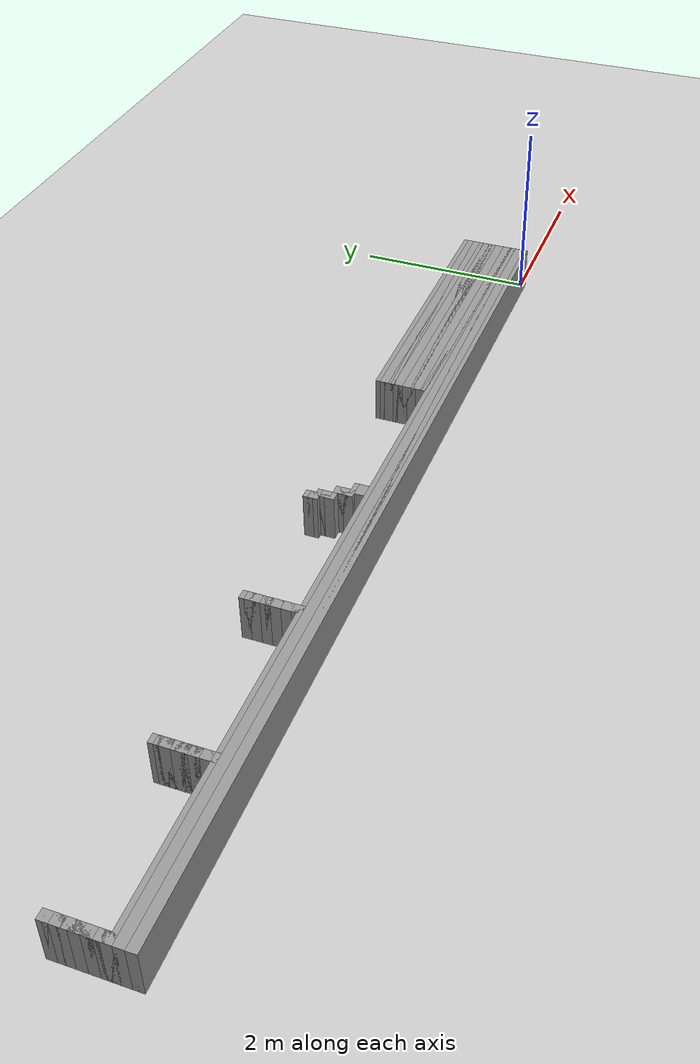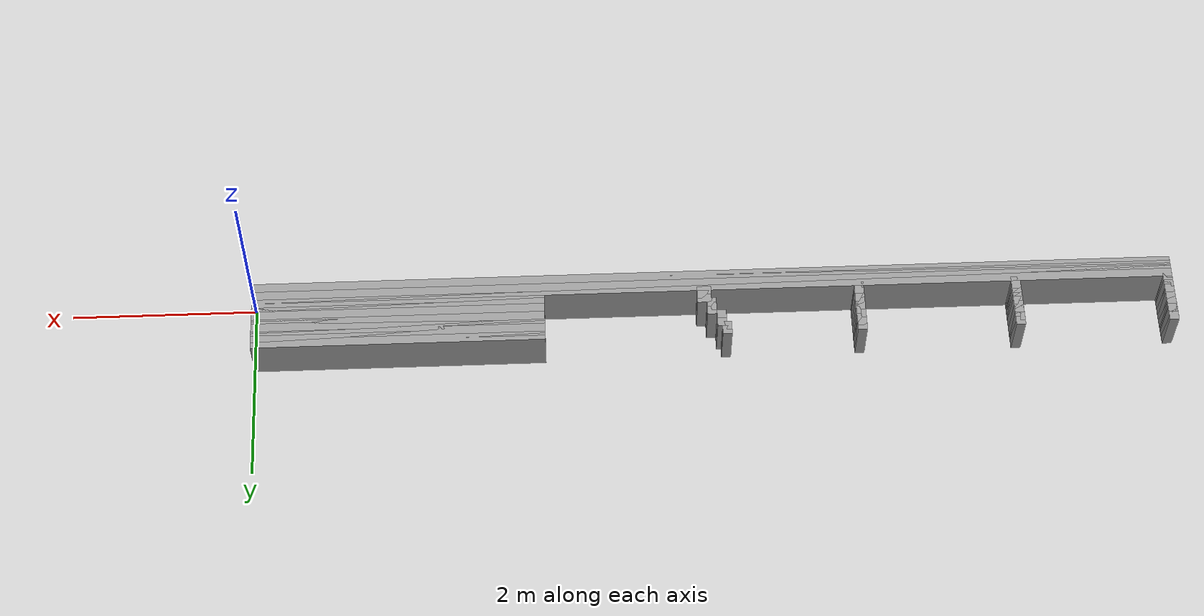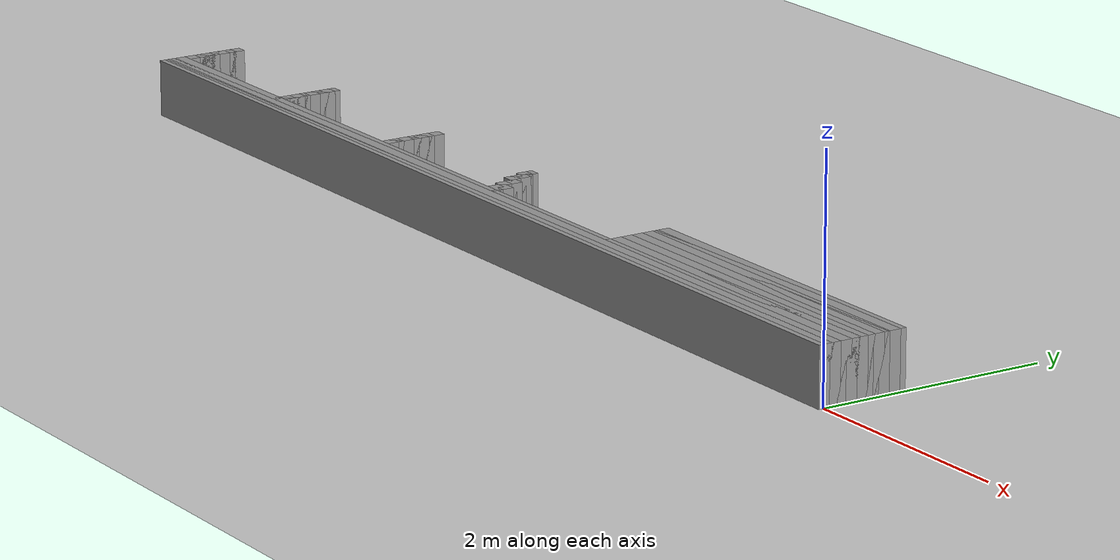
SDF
<sdf version="1.6">
 <world name="GridMap">
  <include><uri>model://sun</uri></include>
  <include><uri>model://ground_plane</uri></include>
  <model name="GridMap">
   <link name="Wall_(99.5,0.0)">
    <collision name="Wall_(99.5,0.0)_Collision">
     <geometry><box><size>9.950000000000001 0.1 0.5</size></box></geometry>
     <pose>-4.9750000000000005 0.0 0.25 0 -0 0</pose>
    </collision>
    <inertial>
     <mass>0.5</mass>
     <pose>0 0.01 0 0 0 0</pose>
     <inertia><ixx>0.004</ixx><ixy>0.001</ixy><ixz>0</ixz><iyy>0.006</iyy><iyz>0</iyz><izz>0.007</izz></inertia>
    </inertial>
    <visual name="Wall_(99.5,0.0)_Visual">
     <geometry><box><size>9.950000000000001 0.1 0.5</size></box></geometry>
     <pose>-4.9750000000000005 0.0 0.25 0 -0 0</pose>
     <material>
      <script><uri>file://media/materials/scripts/gazebo.material</uri><name>Gazebo/Grey</name></script>
      <ambient>1 1 1 1</ambient>
     </material>
     <meta><layer>0</layer></meta>
    </visual>
   </link>
   <link name="Wall_(99.5,1.0)">
    <collision name="Wall_(99.5,1.0)_Collision">
     <geometry><box><size>9.950000000000001 0.1 0.5</size></box></geometry>
     <pose>-4.9750000000000005 0.05 0.25 0 -0 0</pose>
    </collision>
    <inertial>
     <mass>0.5</mass>
     <pose>0 0.01 0 0 0 0</pose>
     <inertia><ixx>0.004</ixx><ixy>0.001</ixy><ixz>0</ixz><iyy>0.006</iyy><iyz>0</iyz><izz>0.007</izz></inertia>
    </inertial>
    <visual name="Wall_(99.5,1.0)_Visual">
     <geometry><box><size>9.950000000000001 0.1 0.5</size></box></geometry>
     <pose>-4.9750000000000005 0.05 0.25 0 -0 0</pose>
     <material>
      <script><uri>file://media/materials/scripts/gazebo.material</uri><name>Gazebo/Grey</name></script>
      <ambient>1 1 1 1</ambient>
     </material>
     <meta><layer>0</layer></meta>
    </visual>
   </link>
   <link name="Wall_(99.5,2.0)">
    <collision name="Wall_(99.5,2.0)_Collision">
     <geometry><box><size>9.950000000000001 0.1 0.5</size></box></geometry>
     <pose>-4.9750000000000005 0.1 0.25 0 -0 0</pose>
    </collision>
    <inertial>
     <mass>0.5</mass>
     <pose>0 0.01 0 0 0 0</pose>
     <inertia><ixx>0.004</ixx><ixy>0.001</ixy><ixz>0</ixz><iyy>0.006</iyy><iyz>0</iyz><izz>0.007</izz></inertia>
    </inertial>
    <visual name="Wall_(99.5,2.0)_Visual">
     <geometry><box><size>9.950000000000001 0.1 0.5</size></box></geometry>
     <pose>-4.9750000000000005 0.1 0.25 0 -0 0</pose>
     <material>
      <script><uri>file://media/materials/scripts/gazebo.material</uri><name>Gazebo/Grey</name></script>
      <ambient>1 1 1 1</ambient>
     </material>
     <meta><layer>0</layer></meta>
    </visual>
   </link>
   <link name="Wall_(99.5,3.0)">
    <collision name="Wall_(99.5,3.0)_Collision">
     <geometry><box><size>9.950000000000001 0.1 0.5</size></box></geometry>
     <pose>-4.9750000000000005 0.15000000000000002 0.25 0 -0 0</pose>
    </collision>
    <inertial>
     <mass>0.5</mass>
     <pose>0 0.01 0 0 0 0</pose>
     <inertia><ixx>0.004</ixx><ixy>0.001</ixy><ixz>0</ixz><iyy>0.006</iyy><iyz>0</iyz><izz>0.007</izz></inertia>
    </inertial>
    <visual name="Wall_(99.5,3.0)_Visual">
     <geometry><box><size>9.950000000000001 0.1 0.5</size></box></geometry>
     <pose>-4.9750000000000005 0.15000000000000002 0.25 0 -0 0</pose>
     <material>
      <script><uri>file://media/materials/scripts/gazebo.material</uri><name>Gazebo/Grey</name></script>
      <ambient>1 1 1 1</ambient>
     </material>
     <meta><layer>0</layer></meta>
    </visual>
   </link>
   <link name="Wall_(31.5,4.0)">
    <collision name="Wall_(31.5,4.0)_Collision">
     <geometry><box><size>3.1500000000000004 0.1 0.5</size></box></geometry>
     <pose>-1.5750000000000002 0.2 0.25 0 -0 0</pose>
    </collision>
    <inertial>
     <mass>0.5</mass>
     <pose>0 0.01 0 0 0 0</pose>
     <inertia><ixx>0.004</ixx><ixy>0.001</ixy><ixz>0</ixz><iyy>0.006</iyy><iyz>0</iyz><izz>0.007</izz></inertia>
    </inertial>
    <visual name="Wall_(31.5,4.0)_Visual">
     <geometry><box><size>3.1500000000000004 0.1 0.5</size></box></geometry>
     <pose>-1.5750000000000002 0.2 0.25 0 -0 0</pose>
     <material>
      <script><uri>file://media/materials/scripts/gazebo.material</uri><name>Gazebo/Grey</name></script>
      <ambient>1 1 1 1</ambient>
     </material>
     <meta><layer>0</layer></meta>
    </visual>
   </link>
   <link name="Wall_(97.5,4.0)">
    <collision name="Wall_(97.5,4.0)_Collision">
     <geometry><box><size>0.15000000000000002 0.1 0.5</size></box></geometry>
     <pose>-4.875 0.2 0.25 0 -0 0</pose>
    </collision>
    <inertial>
     <mass>0.5</mass>
     <pose>0 0.01 0 0 0 0</pose>
     <inertia><ixx>0.004</ixx><ixy>0.001</ixy><ixz>0</ixz><iyy>0.006</iyy><iyz>0</iyz><izz>0.007</izz></inertia>
    </inertial>
    <visual name="Wall_(97.5,4.0)_Visual">
     <geometry><box><size>0.15000000000000002 0.1 0.5</size></box></geometry>
     <pose>-4.875 0.2 0.25 0 -0 0</pose>
     <material>
      <script><uri>file://media/materials/scripts/gazebo.material</uri><name>Gazebo/Grey</name></script>
      <ambient>1 1 1 1</ambient>
     </material>
     <meta><layer>0</layer></meta>
    </visual>
   </link>
   <link name="Wall_(131.0,4.0)">
    <collision name="Wall_(131.0,4.0)_Collision">
     <geometry><box><size>0.1 0.1 0.5</size></box></geometry>
     <pose>-6.550000000000001 0.2 0.25 0 -0 0</pose>
    </collision>
    <inertial>
     <mass>0.5</mass>
     <pose>0 0.01 0 0 0 0</pose>
     <inertia><ixx>0.004</ixx><ixy>0.001</ixy><ixz>0</ixz><iyy>0.006</iyy><iyz>0</iyz><izz>0.007</izz></inertia>
    </inertial>
    <visual name="Wall_(131.0,4.0)_Visual">
     <geometry><box><size>0.1 0.1 0.5</size></box></geometry>
     <pose>-6.550000000000001 0.2 0.25 0 -0 0</pose>
     <material>
      <script><uri>file://media/materials/scripts/gazebo.material</uri><name>Gazebo/Grey</name></script>
      <ambient>1 1 1 1</ambient>
     </material>
     <meta><layer>0</layer></meta>
    </visual>
   </link>
   <link name="Wall_(165.0,4.0)">
    <collision name="Wall_(165.0,4.0)_Collision">
     <geometry><box><size>0.1 0.1 0.5</size></box></geometry>
     <pose>-8.25 0.2 0.25 0 -0 0</pose>
    </collision>
    <inertial>
     <mass>0.5</mass>
     <pose>0 0.01 0 0 0 0</pose>
     <inertia><ixx>0.004</ixx><ixy>0.001</ixy><ixz>0</ixz><iyy>0.006</iyy><iyz>0</iyz><izz>0.007</izz></inertia>
    </inertial>
    <visual name="Wall_(165.0,4.0)_Visual">
     <geometry><box><size>0.1 0.1 0.5</size></box></geometry>
     <pose>-8.25 0.2 0.25 0 -0 0</pose>
     <material>
      <script><uri>file://media/materials/scripts/gazebo.material</uri><name>Gazebo/Grey</name></script>
      <ambient>1 1 1 1</ambient>
     </material>
     <meta><layer>0</layer></meta>
    </visual>
   </link>
   <link name="Wall_(198.0,4.0)">
    <collision name="Wall_(198.0,4.0)_Collision">
     <geometry><box><size>0.1 0.1 0.5</size></box></geometry>
     <pose>-9.9 0.2 0.25 0 -0 0</pose>
    </collision>
    <inertial>
     <mass>0.5</mass>
     <pose>0 0.01 0 0 0 0</pose>
     <inertia><ixx>0.004</ixx><ixy>0.001</ixy><ixz>0</ixz><iyy>0.006</iyy><iyz>0</iyz><izz>0.007</izz></inertia>
    </inertial>
    <visual name="Wall_(198.0,4.0)_Visual">
     <geometry><box><size>0.1 0.1 0.5</size></box></geometry>
     <pose>-9.9 0.2 0.25 0 -0 0</pose>
     <material>
      <script><uri>file://media/materials/scripts/gazebo.material</uri><name>Gazebo/Grey</name></script>
      <ambient>1 1 1 1</ambient>
     </material>
     <meta><layer>0</layer></meta>
    </visual>
   </link>
   <link name="Wall_(31.5,5.0)">
    <collision name="Wall_(31.5,5.0)_Collision">
     <geometry><box><size>3.1500000000000004 0.1 0.5</size></box></geometry>
     <pose>-1.5750000000000002 0.25 0.25 0 -0 0</pose>
    </collision>
    <inertial>
     <mass>0.5</mass>
     <pose>0 0.01 0 0 0 0</pose>
     <inertia><ixx>0.004</ixx><ixy>0.001</ixy><ixz>0</ixz><iyy>0.006</iyy><iyz>0</iyz><izz>0.007</izz></inertia>
    </inertial>
    <visual name="Wall_(31.5,5.0)_Visual">
     <geometry><box><size>3.1500000000000004 0.1 0.5</size></box></geometry>
     <pose>-1.5750000000000002 0.25 0.25 0 -0 0</pose>
     <material>
      <script><uri>file://media/materials/scripts/gazebo.material</uri><name>Gazebo/Grey</name></script>
      <ambient>1 1 1 1</ambient>
     </material>
     <meta><layer>0</layer></meta>
    </visual>
   </link>
   <link name="Wall_(97.5,5.0)">
    <collision name="Wall_(97.5,5.0)_Collision">
     <geometry><box><size>0.15000000000000002 0.1 0.5</size></box></geometry>
     <pose>-4.875 0.25 0.25 0 -0 0</pose>
    </collision>
    <inertial>
     <mass>0.5</mass>
     <pose>0 0.01 0 0 0 0</pose>
     <inertia><ixx>0.004</ixx><ixy>0.001</ixy><ixz>0</ixz><iyy>0.006</iyy><iyz>0</iyz><izz>0.007</izz></inertia>
    </inertial>
    <visual name="Wall_(97.5,5.0)_Visual">
     <geometry><box><size>0.15000000000000002 0.1 0.5</size></box></geometry>
     <pose>-4.875 0.25 0.25 0 -0 0</pose>
     <material>
      <script><uri>file://media/materials/scripts/gazebo.material</uri><name>Gazebo/Grey</name></script>
      <ambient>1 1 1 1</ambient>
     </material>
     <meta><layer>0</layer></meta>
    </visual>
   </link>
   <link name="Wall_(131.0,5.0)">
    <collision name="Wall_(131.0,5.0)_Collision">
     <geometry><box><size>0.1 0.1 0.5</size></box></geometry>
     <pose>-6.550000000000001 0.25 0.25 0 -0 0</pose>
    </collision>
    <inertial>
     <mass>0.5</mass>
     <pose>0 0.01 0 0 0 0</pose>
     <inertia><ixx>0.004</ixx><ixy>0.001</ixy><ixz>0</ixz><iyy>0.006</iyy><iyz>0</iyz><izz>0.007</izz></inertia>
    </inertial>
    <visual name="Wall_(131.0,5.0)_Visual">
     <geometry><box><size>0.1 0.1 0.5</size></box></geometry>
     <pose>-6.550000000000001 0.25 0.25 0 -0 0</pose>
     <material>
      <script><uri>file://media/materials/scripts/gazebo.material</uri><name>Gazebo/Grey</name></script>
      <ambient>1 1 1 1</ambient>
     </material>
     <meta><layer>0</layer></meta>
    </visual>
   </link>
   <link name="Wall_(165.0,5.0)">
    <collision name="Wall_(165.0,5.0)_Collision">
     <geometry><box><size>0.1 0.1 0.5</size></box></geometry>
     <pose>-8.25 0.25 0.25 0 -0 0</pose>
    </collision>
    <inertial>
     <mass>0.5</mass>
     <pose>0 0.01 0 0 0 0</pose>
     <inertia><ixx>0.004</ixx><ixy>0.001</ixy><ixz>0</ixz><iyy>0.006</iyy><iyz>0</iyz><izz>0.007</izz></inertia>
    </inertial>
    <visual name="Wall_(165.0,5.0)_Visual">
     <geometry><box><size>0.1 0.1 0.5</size></box></geometry>
     <pose>-8.25 0.25 0.25 0 -0 0</pose>
     <material>
      <script><uri>file://media/materials/scripts/gazebo.material</uri><name>Gazebo/Grey</name></script>
      <ambient>1 1 1 1</ambient>
     </material>
     <meta><layer>0</layer></meta>
    </visual>
   </link>
   <link name="Wall_(198.0,5.0)">
    <collision name="Wall_(198.0,5.0)_Collision">
     <geometry><box><size>0.1 0.1 0.5</size></box></geometry>
     <pose>-9.9 0.25 0.25 0 -0 0</pose>
    </collision>
    <inertial>
     <mass>0.5</mass>
     <pose>0 0.01 0 0 0 0</pose>
     <inertia><ixx>0.004</ixx><ixy>0.001</ixy><ixz>0</ixz><iyy>0.006</iyy><iyz>0</iyz><izz>0.007</izz></inertia>
    </inertial>
    <visual name="Wall_(198.0,5.0)_Visual">
     <geometry><box><size>0.1 0.1 0.5</size></box></geometry>
     <pose>-9.9 0.25 0.25 0 -0 0</pose>
     <material>
      <script><uri>file://media/materials/scripts/gazebo.material</uri><name>Gazebo/Grey</name></script>
      <ambient>1 1 1 1</ambient>
     </material>
     <meta><layer>0</layer></meta>
    </visual>
   </link>
   <link name="Wall_(31.5,6.0)">
    <collision name="Wall_(31.5,6.0)_Collision">
     <geometry><box><size>3.1500000000000004 0.1 0.5</size></box></geometry>
     <pose>-1.5750000000000002 0.30000000000000004 0.25 0 -0 0</pose>
    </collision>
    <inertial>
     <mass>0.5</mass>
     <pose>0 0.01 0 0 0 0</pose>
     <inertia><ixx>0.004</ixx><ixy>0.001</ixy><ixz>0</ixz><iyy>0.006</iyy><iyz>0</iyz><izz>0.007</izz></inertia>
    </inertial>
    <visual name="Wall_(31.5,6.0)_Visual">
     <geometry><box><size>3.1500000000000004 0.1 0.5</size></box></geometry>
     <pose>-1.5750000000000002 0.30000000000000004 0.25 0 -0 0</pose>
     <material>
      <script><uri>file://media/materials/scripts/gazebo.material</uri><name>Gazebo/Grey</name></script>
      <ambient>1 1 1 1</ambient>
     </material>
     <meta><layer>0</layer></meta>
    </visual>
   </link>
   <link name="Wall_(97.5,6.0)">
    <collision name="Wall_(97.5,6.0)_Collision">
     <geometry><box><size>0.15000000000000002 0.1 0.5</size></box></geometry>
     <pose>-4.875 0.30000000000000004 0.25 0 -0 0</pose>
    </collision>
    <inertial>
     <mass>0.5</mass>
     <pose>0 0.01 0 0 0 0</pose>
     <inertia><ixx>0.004</ixx><ixy>0.001</ixy><ixz>0</ixz><iyy>0.006</iyy><iyz>0</iyz><izz>0.007</izz></inertia>
    </inertial>
    <visual name="Wall_(97.5,6.0)_Visual">
     <geometry><box><size>0.15000000000000002 0.1 0.5</size></box></geometry>
     <pose>-4.875 0.30000000000000004 0.25 0 -0 0</pose>
     <material>
      <script><uri>file://media/materials/scripts/gazebo.material</uri><name>Gazebo/Grey</name></script>
      <ambient>1 1 1 1</ambient>
     </material>
     <meta><layer>0</layer></meta>
    </visual>
   </link>
   <link name="Wall_(131.0,6.0)">
    <collision name="Wall_(131.0,6.0)_Collision">
     <geometry><box><size>0.1 0.1 0.5</size></box></geometry>
     <pose>-6.550000000000001 0.30000000000000004 0.25 0 -0 0</pose>
    </collision>
    <inertial>
     <mass>0.5</mass>
     <pose>0 0.01 0 0 0 0</pose>
     <inertia><ixx>0.004</ixx><ixy>0.001</ixy><ixz>0</ixz><iyy>0.006</iyy><iyz>0</iyz><izz>0.007</izz></inertia>
    </inertial>
    <visual name="Wall_(131.0,6.0)_Visual">
     <geometry><box><size>0.1 0.1 0.5</size></box></geometry>
     <pose>-6.550000000000001 0.30000000000000004 0.25 0 -0 0</pose>
     <material>
      <script><uri>file://media/materials/scripts/gazebo.material</uri><name>Gazebo/Grey</name></script>
      <ambient>1 1 1 1</ambient>
     </material>
     <meta><layer>0</layer></meta>
    </visual>
   </link>
   <link name="Wall_(165.0,6.0)">
    <collision name="Wall_(165.0,6.0)_Collision">
     <geometry><box><size>0.1 0.1 0.5</size></box></geometry>
     <pose>-8.25 0.30000000000000004 0.25 0 -0 0</pose>
    </collision>
    <inertial>
     <mass>0.5</mass>
     <pose>0 0.01 0 0 0 0</pose>
     <inertia><ixx>0.004</ixx><ixy>0.001</ixy><ixz>0</ixz><iyy>0.006</iyy><iyz>0</iyz><izz>0.007</izz></inertia>
    </inertial>
    <visual name="Wall_(165.0,6.0)_Visual">
     <geometry><box><size>0.1 0.1 0.5</size></box></geometry>
     <pose>-8.25 0.30000000000000004 0.25 0 -0 0</pose>
     <material>
      <script><uri>file://media/materials/scripts/gazebo.material</uri><name>Gazebo/Grey</name></script>
      <ambient>1 1 1 1</ambient>
     </material>
     <meta><layer>0</layer></meta>
    </visual>
   </link>
   <link name="Wall_(198.0,6.0)">
    <collision name="Wall_(198.0,6.0)_Collision">
     <geometry><box><size>0.1 0.1 0.5</size></box></geometry>
     <pose>-9.9 0.30000000000000004 0.25 0 -0 0</pose>
    </collision>
    <inertial>
     <mass>0.5</mass>
     <pose>0 0.01 0 0 0 0</pose>
     <inertia><ixx>0.004</ixx><ixy>0.001</ixy><ixz>0</ixz><iyy>0.006</iyy><iyz>0</iyz><izz>0.007</izz></inertia>
    </inertial>
    <visual name="Wall_(198.0,6.0)_Visual">
     <geometry><box><size>0.1 0.1 0.5</size></box></geometry>
     <pose>-9.9 0.30000000000000004 0.25 0 -0 0</pose>
     <material>
      <script><uri>file://media/materials/scripts/gazebo.material</uri><name>Gazebo/Grey</name></script>
      <ambient>1 1 1 1</ambient>
     </material>
     <meta><layer>0</layer></meta>
    </visual>
   </link>
   <link name="Wall_(31.5,7.0)">
    <collision name="Wall_(31.5,7.0)_Collision">
     <geometry><box><size>3.1500000000000004 0.1 0.5</size></box></geometry>
     <pose>-1.5750000000000002 0.35000000000000003 0.25 0 -0 0</pose>
    </collision>
    <inertial>
     <mass>0.5</mass>
     <pose>0 0.01 0 0 0 0</pose>
     <inertia><ixx>0.004</ixx><ixy>0.001</ixy><ixz>0</ixz><iyy>0.006</iyy><iyz>0</iyz><izz>0.007</izz></inertia>
    </inertial>
    <visual name="Wall_(31.5,7.0)_Visual">
     <geometry><box><size>3.1500000000000004 0.1 0.5</size></box></geometry>
     <pose>-1.5750000000000002 0.35000000000000003 0.25 0 -0 0</pose>
     <material>
      <script><uri>file://media/materials/scripts/gazebo.material</uri><name>Gazebo/Grey</name></script>
      <ambient>1 1 1 1</ambient>
     </material>
     <meta><layer>0</layer></meta>
    </visual>
   </link>
   <link name="Wall_(99.0,7.0)">
    <collision name="Wall_(99.0,7.0)_Collision">
     <geometry><box><size>0.1 0.1 0.5</size></box></geometry>
     <pose>-4.95 0.35000000000000003 0.25 0 -0 0</pose>
    </collision>
    <inertial>
     <mass>0.5</mass>
     <pose>0 0.01 0 0 0 0</pose>
     <inertia><ixx>0.004</ixx><ixy>0.001</ixy><ixz>0</ixz><iyy>0.006</iyy><iyz>0</iyz><izz>0.007</izz></inertia>
    </inertial>
    <visual name="Wall_(99.0,7.0)_Visual">
     <geometry><box><size>0.1 0.1 0.5</size></box></geometry>
     <pose>-4.95 0.35000000000000003 0.25 0 -0 0</pose>
     <material>
      <script><uri>file://media/materials/scripts/gazebo.material</uri><name>Gazebo/Grey</name></script>
      <ambient>1 1 1 1</ambient>
     </material>
     <meta><layer>0</layer></meta>
    </visual>
   </link>
   <link name="Wall_(131.0,7.0)">
    <collision name="Wall_(131.0,7.0)_Collision">
     <geometry><box><size>0.1 0.1 0.5</size></box></geometry>
     <pose>-6.550000000000001 0.35000000000000003 0.25 0 -0 0</pose>
    </collision>
    <inertial>
     <mass>0.5</mass>
     <pose>0 0.01 0 0 0 0</pose>
     <inertia><ixx>0.004</ixx><ixy>0.001</ixy><ixz>0</ixz><iyy>0.006</iyy><iyz>0</iyz><izz>0.007</izz></inertia>
    </inertial>
    <visual name="Wall_(131.0,7.0)_Visual">
     <geometry><box><size>0.1 0.1 0.5</size></box></geometry>
     <pose>-6.550000000000001 0.35000000000000003 0.25 0 -0 0</pose>
     <material>
      <script><uri>file://media/materials/scripts/gazebo.material</uri><name>Gazebo/Grey</name></script>
      <ambient>1 1 1 1</ambient>
     </material>
     <meta><layer>0</layer></meta>
    </visual>
   </link>
   <link name="Wall_(165.0,7.0)">
    <collision name="Wall_(165.0,7.0)_Collision">
     <geometry><box><size>0.1 0.1 0.5</size></box></geometry>
     <pose>-8.25 0.35000000000000003 0.25 0 -0 0</pose>
    </collision>
    <inertial>
     <mass>0.5</mass>
     <pose>0 0.01 0 0 0 0</pose>
     <inertia><ixx>0.004</ixx><ixy>0.001</ixy><ixz>0</ixz><iyy>0.006</iyy><iyz>0</iyz><izz>0.007</izz></inertia>
    </inertial>
    <visual name="Wall_(165.0,7.0)_Visual">
     <geometry><box><size>0.1 0.1 0.5</size></box></geometry>
     <pose>-8.25 0.35000000000000003 0.25 0 -0 0</pose>
     <material>
      <script><uri>file://media/materials/scripts/gazebo.material</uri><name>Gazebo/Grey</name></script>
      <ambient>1 1 1 1</ambient>
     </material>
     <meta><layer>0</layer></meta>
    </visual>
   </link>
   <link name="Wall_(198.0,7.0)">
    <collision name="Wall_(198.0,7.0)_Collision">
     <geometry><box><size>0.1 0.1 0.5</size></box></geometry>
     <pose>-9.9 0.35000000000000003 0.25 0 -0 0</pose>
    </collision>
    <inertial>
     <mass>0.5</mass>
     <pose>0 0.01 0 0 0 0</pose>
     <inertia><ixx>0.004</ixx><ixy>0.001</ixy><ixz>0</ixz><iyy>0.006</iyy><iyz>0</iyz><izz>0.007</izz></inertia>
    </inertial>
    <visual name="Wall_(198.0,7.0)_Visual">
     <geometry><box><size>0.1 0.1 0.5</size></box></geometry>
     <pose>-9.9 0.35000000000000003 0.25 0 -0 0</pose>
     <material>
      <script><uri>file://media/materials/scripts/gazebo.material</uri><name>Gazebo/Grey</name></script>
      <ambient>1 1 1 1</ambient>
     </material>
     <meta><layer>0</layer></meta>
    </visual>
   </link>
   <link name="Wall_(31.5,8.0)">
    <collision name="Wall_(31.5,8.0)_Collision">
     <geometry><box><size>3.1500000000000004 0.1 0.5</size></box></geometry>
     <pose>-1.5750000000000002 0.4 0.25 0 -0 0</pose>
    </collision>
    <inertial>
     <mass>0.5</mass>
     <pose>0 0.01 0 0 0 0</pose>
     <inertia><ixx>0.004</ixx><ixy>0.001</ixy><ixz>0</ixz><iyy>0.006</iyy><iyz>0</iyz><izz>0.007</izz></inertia>
    </inertial>
    <visual name="Wall_(31.5,8.0)_Visual">
     <geometry><box><size>3.1500000000000004 0.1 0.5</size></box></geometry>
     <pose>-1.5750000000000002 0.4 0.25 0 -0 0</pose>
     <material>
      <script><uri>file://media/materials/scripts/gazebo.material</uri><name>Gazebo/Grey</name></script>
      <ambient>1 1 1 1</ambient>
     </material>
     <meta><layer>0</layer></meta>
    </visual>
   </link>
   <link name="Wall_(99.0,8.0)">
    <collision name="Wall_(99.0,8.0)_Collision">
     <geometry><box><size>0.1 0.1 0.5</size></box></geometry>
     <pose>-4.95 0.4 0.25 0 -0 0</pose>
    </collision>
    <inertial>
     <mass>0.5</mass>
     <pose>0 0.01 0 0 0 0</pose>
     <inertia><ixx>0.004</ixx><ixy>0.001</ixy><ixz>0</ixz><iyy>0.006</iyy><iyz>0</iyz><izz>0.007</izz></inertia>
    </inertial>
    <visual name="Wall_(99.0,8.0)_Visual">
     <geometry><box><size>0.1 0.1 0.5</size></box></geometry>
     <pose>-4.95 0.4 0.25 0 -0 0</pose>
     <material>
      <script><uri>file://media/materials/scripts/gazebo.material</uri><name>Gazebo/Grey</name></script>
      <ambient>1 1 1 1</ambient>
     </material>
     <meta><layer>0</layer></meta>
    </visual>
   </link>
   <link name="Wall_(131.0,8.0)">
    <collision name="Wall_(131.0,8.0)_Collision">
     <geometry><box><size>0.1 0.1 0.5</size></box></geometry>
     <pose>-6.550000000000001 0.4 0.25 0 -0 0</pose>
    </collision>
    <inertial>
     <mass>0.5</mass>
     <pose>0 0.01 0 0 0 0</pose>
     <inertia><ixx>0.004</ixx><ixy>0.001</ixy><ixz>0</ixz><iyy>0.006</iyy><iyz>0</iyz><izz>0.007</izz></inertia>
    </inertial>
    <visual name="Wall_(131.0,8.0)_Visual">
     <geometry><box><size>0.1 0.1 0.5</size></box></geometry>
     <pose>-6.550000000000001 0.4 0.25 0 -0 0</pose>
     <material>
      <script><uri>file://media/materials/scripts/gazebo.material</uri><name>Gazebo/Grey</name></script>
      <ambient>1 1 1 1</ambient>
     </material>
     <meta><layer>0</layer></meta>
    </visual>
   </link>
   <link name="Wall_(165.0,8.0)">
    <collision name="Wall_(165.0,8.0)_Collision">
     <geometry><box><size>0.1 0.1 0.5</size></box></geometry>
     <pose>-8.25 0.4 0.25 0 -0 0</pose>
    </collision>
    <inertial>
     <mass>0.5</mass>
     <pose>0 0.01 0 0 0 0</pose>
     <inertia><ixx>0.004</ixx><ixy>0.001</ixy><ixz>0</ixz><iyy>0.006</iyy><iyz>0</iyz><izz>0.007</izz></inertia>
    </inertial>
    <visual name="Wall_(165.0,8.0)_Visual">
     <geometry><box><size>0.1 0.1 0.5</size></box></geometry>
     <pose>-8.25 0.4 0.25 0 -0 0</pose>
     <material>
      <script><uri>file://media/materials/scripts/gazebo.material</uri><name>Gazebo/Grey</name></script>
      <ambient>1 1 1 1</ambient>
     </material>
     <meta><layer>0</layer></meta>
    </visual>
   </link>
   <link name="Wall_(198.0,8.0)">
    <collision name="Wall_(198.0,8.0)_Collision">
     <geometry><box><size>0.1 0.1 0.5</size></box></geometry>
     <pose>-9.9 0.4 0.25 0 -0 0</pose>
    </collision>
    <inertial>
     <mass>0.5</mass>
     <pose>0 0.01 0 0 0 0</pose>
     <inertia><ixx>0.004</ixx><ixy>0.001</ixy><ixz>0</ixz><iyy>0.006</iyy><iyz>0</iyz><izz>0.007</izz></inertia>
    </inertial>
    <visual name="Wall_(198.0,8.0)_Visual">
     <geometry><box><size>0.1 0.1 0.5</size></box></geometry>
     <pose>-9.9 0.4 0.25 0 -0 0</pose>
     <material>
      <script><uri>file://media/materials/scripts/gazebo.material</uri><name>Gazebo/Grey</name></script>
      <ambient>1 1 1 1</ambient>
     </material>
     <meta><layer>0</layer></meta>
    </visual>
   </link>
   <link name="Wall_(31.5,9.0)">
    <collision name="Wall_(31.5,9.0)_Collision">
     <geometry><box><size>3.1500000000000004 0.1 0.5</size></box></geometry>
     <pose>-1.5750000000000002 0.45 0.25 0 -0 0</pose>
    </collision>
    <inertial>
     <mass>0.5</mass>
     <pose>0 0.01 0 0 0 0</pose>
     <inertia><ixx>0.004</ixx><ixy>0.001</ixy><ixz>0</ixz><iyy>0.006</iyy><iyz>0</iyz><izz>0.007</izz></inertia>
    </inertial>
    <visual name="Wall_(31.5,9.0)_Visual">
     <geometry><box><size>3.1500000000000004 0.1 0.5</size></box></geometry>
     <pose>-1.5750000000000002 0.45 0.25 0 -0 0</pose>
     <material>
      <script><uri>file://media/materials/scripts/gazebo.material</uri><name>Gazebo/Grey</name></script>
      <ambient>1 1 1 1</ambient>
     </material>
     <meta><layer>0</layer></meta>
    </visual>
   </link>
   <link name="Wall_(99.0,9.0)">
    <collision name="Wall_(99.0,9.0)_Collision">
     <geometry><box><size>0.1 0.1 0.5</size></box></geometry>
     <pose>-4.95 0.45 0.25 0 -0 0</pose>
    </collision>
    <inertial>
     <mass>0.5</mass>
     <pose>0 0.01 0 0 0 0</pose>
     <inertia><ixx>0.004</ixx><ixy>0.001</ixy><ixz>0</ixz><iyy>0.006</iyy><iyz>0</iyz><izz>0.007</izz></inertia>
    </inertial>
    <visual name="Wall_(99.0,9.0)_Visual">
     <geometry><box><size>0.1 0.1 0.5</size></box></geometry>
     <pose>-4.95 0.45 0.25 0 -0 0</pose>
     <material>
      <script><uri>file://media/materials/scripts/gazebo.material</uri><name>Gazebo/Grey</name></script>
      <ambient>1 1 1 1</ambient>
     </material>
     <meta><layer>0</layer></meta>
    </visual>
   </link>
   <link name="Wall_(131.0,9.0)">
    <collision name="Wall_(131.0,9.0)_Collision">
     <geometry><box><size>0.1 0.1 0.5</size></box></geometry>
     <pose>-6.550000000000001 0.45 0.25 0 -0 0</pose>
    </collision>
    <inertial>
     <mass>0.5</mass>
     <pose>0 0.01 0 0 0 0</pose>
     <inertia><ixx>0.004</ixx><ixy>0.001</ixy><ixz>0</ixz><iyy>0.006</iyy><iyz>0</iyz><izz>0.007</izz></inertia>
    </inertial>
    <visual name="Wall_(131.0,9.0)_Visual">
     <geometry><box><size>0.1 0.1 0.5</size></box></geometry>
     <pose>-6.550000000000001 0.45 0.25 0 -0 0</pose>
     <material>
      <script><uri>file://media/materials/scripts/gazebo.material</uri><name>Gazebo/Grey</name></script>
      <ambient>1 1 1 1</ambient>
     </material>
     <meta><layer>0</layer></meta>
    </visual>
   </link>
   <link name="Wall_(165.0,9.0)">
    <collision name="Wall_(165.0,9.0)_Collision">
     <geometry><box><size>0.1 0.1 0.5</size></box></geometry>
     <pose>-8.25 0.45 0.25 0 -0 0</pose>
    </collision>
    <inertial>
     <mass>0.5</mass>
     <pose>0 0.01 0 0 0 0</pose>
     <inertia><ixx>0.004</ixx><ixy>0.001</ixy><ixz>0</ixz><iyy>0.006</iyy><iyz>0</iyz><izz>0.007</izz></inertia>
    </inertial>
    <visual name="Wall_(165.0,9.0)_Visual">
     <geometry><box><size>0.1 0.1 0.5</size></box></geometry>
     <pose>-8.25 0.45 0.25 0 -0 0</pose>
     <material>
      <script><uri>file://media/materials/scripts/gazebo.material</uri><name>Gazebo/Grey</name></script>
      <ambient>1 1 1 1</ambient>
     </material>
     <meta><layer>0</layer></meta>
    </visual>
   </link>
   <link name="Wall_(198.0,9.0)">
    <collision name="Wall_(198.0,9.0)_Collision">
     <geometry><box><size>0.1 0.1 0.5</size></box></geometry>
     <pose>-9.9 0.45 0.25 0 -0 0</pose>
    </collision>
    <inertial>
     <mass>0.5</mass>
     <pose>0 0.01 0 0 0 0</pose>
     <inertia><ixx>0.004</ixx><ixy>0.001</ixy><ixz>0</ixz><iyy>0.006</iyy><iyz>0</iyz><izz>0.007</izz></inertia>
    </inertial>
    <visual name="Wall_(198.0,9.0)_Visual">
     <geometry><box><size>0.1 0.1 0.5</size></box></geometry>
     <pose>-9.9 0.45 0.25 0 -0 0</pose>
     <material>
      <script><uri>file://media/materials/scripts/gazebo.material</uri><name>Gazebo/Grey</name></script>
      <ambient>1 1 1 1</ambient>
     </material>
     <meta><layer>0</layer></meta>
    </visual>
   </link>
   <link name="Wall_(31.5,10.0)">
    <collision name="Wall_(31.5,10.0)_Collision">
     <geometry><box><size>3.1500000000000004 0.1 0.5</size></box></geometry>
     <pose>-1.5750000000000002 0.5 0.25 0 -0 0</pose>
    </collision>
    <inertial>
     <mass>0.5</mass>
     <pose>0 0.01 0 0 0 0</pose>
     <inertia><ixx>0.004</ixx><ixy>0.001</ixy><ixz>0</ixz><iyy>0.006</iyy><iyz>0</iyz><izz>0.007</izz></inertia>
    </inertial>
    <visual name="Wall_(31.5,10.0)_Visual">
     <geometry><box><size>3.1500000000000004 0.1 0.5</size></box></geometry>
     <pose>-1.5750000000000002 0.5 0.25 0 -0 0</pose>
     <material>
      <script><uri>file://media/materials/scripts/gazebo.material</uri><name>Gazebo/Grey</name></script>
      <ambient>1 1 1 1</ambient>
     </material>
     <meta><layer>0</layer></meta>
    </visual>
   </link>
   <link name="Wall_(101.0,10.0)">
    <collision name="Wall_(101.0,10.0)_Collision">
     <geometry><box><size>0.1 0.1 0.5</size></box></geometry>
     <pose>-5.050000000000001 0.5 0.25 0 -0 0</pose>
    </collision>
    <inertial>
     <mass>0.5</mass>
     <pose>0 0.01 0 0 0 0</pose>
     <inertia><ixx>0.004</ixx><ixy>0.001</ixy><ixz>0</ixz><iyy>0.006</iyy><iyz>0</iyz><izz>0.007</izz></inertia>
    </inertial>
    <visual name="Wall_(101.0,10.0)_Visual">
     <geometry><box><size>0.1 0.1 0.5</size></box></geometry>
     <pose>-5.050000000000001 0.5 0.25 0 -0 0</pose>
     <material>
      <script><uri>file://media/materials/scripts/gazebo.material</uri><name>Gazebo/Grey</name></script>
      <ambient>1 1 1 1</ambient>
     </material>
     <meta><layer>0</layer></meta>
    </visual>
   </link>
   <link name="Wall_(131.0,10.0)">
    <collision name="Wall_(131.0,10.0)_Collision">
     <geometry><box><size>0.1 0.1 0.5</size></box></geometry>
     <pose>-6.550000000000001 0.5 0.25 0 -0 0</pose>
    </collision>
    <inertial>
     <mass>0.5</mass>
     <pose>0 0.01 0 0 0 0</pose>
     <inertia><ixx>0.004</ixx><ixy>0.001</ixy><ixz>0</ixz><iyy>0.006</iyy><iyz>0</iyz><izz>0.007</izz></inertia>
    </inertial>
    <visual name="Wall_(131.0,10.0)_Visual">
     <geometry><box><size>0.1 0.1 0.5</size></box></geometry>
     <pose>-6.550000000000001 0.5 0.25 0 -0 0</pose>
     <material>
      <script><uri>file://media/materials/scripts/gazebo.material</uri><name>Gazebo/Grey</name></script>
      <ambient>1 1 1 1</ambient>
     </material>
     <meta><layer>0</layer></meta>
    </visual>
   </link>
   <link name="Wall_(165.0,10.0)">
    <collision name="Wall_(165.0,10.0)_Collision">
     <geometry><box><size>0.1 0.1 0.5</size></box></geometry>
     <pose>-8.25 0.5 0.25 0 -0 0</pose>
    </collision>
    <inertial>
     <mass>0.5</mass>
     <pose>0 0.01 0 0 0 0</pose>
     <inertia><ixx>0.004</ixx><ixy>0.001</ixy><ixz>0</ixz><iyy>0.006</iyy><iyz>0</iyz><izz>0.007</izz></inertia>
    </inertial>
    <visual name="Wall_(165.0,10.0)_Visual">
     <geometry><box><size>0.1 0.1 0.5</size></box></geometry>
     <pose>-8.25 0.5 0.25 0 -0 0</pose>
     <material>
      <script><uri>file://media/materials/scripts/gazebo.material</uri><name>Gazebo/Grey</name></script>
      <ambient>1 1 1 1</ambient>
     </material>
     <meta><layer>0</layer></meta>
    </visual>
   </link>
   <link name="Wall_(198.0,10.0)">
    <collision name="Wall_(198.0,10.0)_Collision">
     <geometry><box><size>0.1 0.1 0.5</size></box></geometry>
     <pose>-9.9 0.5 0.25 0 -0 0</pose>
    </collision>
    <inertial>
     <mass>0.5</mass>
     <pose>0 0.01 0 0 0 0</pose>
     <inertia><ixx>0.004</ixx><ixy>0.001</ixy><ixz>0</ixz><iyy>0.006</iyy><iyz>0</iyz><izz>0.007</izz></inertia>
    </inertial>
    <visual name="Wall_(198.0,10.0)_Visual">
     <geometry><box><size>0.1 0.1 0.5</size></box></geometry>
     <pose>-9.9 0.5 0.25 0 -0 0</pose>
     <material>
      <script><uri>file://media/materials/scripts/gazebo.material</uri><name>Gazebo/Grey</name></script>
      <ambient>1 1 1 1</ambient>
     </material>
     <meta><layer>0</layer></meta>
    </visual>
   </link>
   <link name="Wall_(31.5,11.0)">
    <collision name="Wall_(31.5,11.0)_Collision">
     <geometry><box><size>3.1500000000000004 0.1 0.5</size></box></geometry>
     <pose>-1.5750000000000002 0.55 0.25 0 -0 0</pose>
    </collision>
    <inertial>
     <mass>0.5</mass>
     <pose>0 0.01 0 0 0 0</pose>
     <inertia><ixx>0.004</ixx><ixy>0.001</ixy><ixz>0</ixz><iyy>0.006</iyy><iyz>0</iyz><izz>0.007</izz></inertia>
    </inertial>
    <visual name="Wall_(31.5,11.0)_Visual">
     <geometry><box><size>3.1500000000000004 0.1 0.5</size></box></geometry>
     <pose>-1.5750000000000002 0.55 0.25 0 -0 0</pose>
     <material>
      <script><uri>file://media/materials/scripts/gazebo.material</uri><name>Gazebo/Grey</name></script>
      <ambient>1 1 1 1</ambient>
     </material>
     <meta><layer>0</layer></meta>
    </visual>
   </link>
   <link name="Wall_(101.0,11.0)">
    <collision name="Wall_(101.0,11.0)_Collision">
     <geometry><box><size>0.1 0.1 0.5</size></box></geometry>
     <pose>-5.050000000000001 0.55 0.25 0 -0 0</pose>
    </collision>
    <inertial>
     <mass>0.5</mass>
     <pose>0 0.01 0 0 0 0</pose>
     <inertia><ixx>0.004</ixx><ixy>0.001</ixy><ixz>0</ixz><iyy>0.006</iyy><iyz>0</iyz><izz>0.007</izz></inertia>
    </inertial>
    <visual name="Wall_(101.0,11.0)_Visual">
     <geometry><box><size>0.1 0.1 0.5</size></box></geometry>
     <pose>-5.050000000000001 0.55 0.25 0 -0 0</pose>
     <material>
      <script><uri>file://media/materials/scripts/gazebo.material</uri><name>Gazebo/Grey</name></script>
      <ambient>1 1 1 1</ambient>
     </material>
     <meta><layer>0</layer></meta>
    </visual>
   </link>
   <link name="Wall_(131.0,11.0)">
    <collision name="Wall_(131.0,11.0)_Collision">
     <geometry><box><size>0.1 0.1 0.5</size></box></geometry>
     <pose>-6.550000000000001 0.55 0.25 0 -0 0</pose>
    </collision>
    <inertial>
     <mass>0.5</mass>
     <pose>0 0.01 0 0 0 0</pose>
     <inertia><ixx>0.004</ixx><ixy>0.001</ixy><ixz>0</ixz><iyy>0.006</iyy><iyz>0</iyz><izz>0.007</izz></inertia>
    </inertial>
    <visual name="Wall_(131.0,11.0)_Visual">
     <geometry><box><size>0.1 0.1 0.5</size></box></geometry>
     <pose>-6.550000000000001 0.55 0.25 0 -0 0</pose>
     <material>
      <script><uri>file://media/materials/scripts/gazebo.material</uri><name>Gazebo/Grey</name></script>
      <ambient>1 1 1 1</ambient>
     </material>
     <meta><layer>0</layer></meta>
    </visual>
   </link>
   <link name="Wall_(165.0,11.0)">
    <collision name="Wall_(165.0,11.0)_Collision">
     <geometry><box><size>0.1 0.1 0.5</size></box></geometry>
     <pose>-8.25 0.55 0.25 0 -0 0</pose>
    </collision>
    <inertial>
     <mass>0.5</mass>
     <pose>0 0.01 0 0 0 0</pose>
     <inertia><ixx>0.004</ixx><ixy>0.001</ixy><ixz>0</ixz><iyy>0.006</iyy><iyz>0</iyz><izz>0.007</izz></inertia>
    </inertial>
    <visual name="Wall_(165.0,11.0)_Visual">
     <geometry><box><size>0.1 0.1 0.5</size></box></geometry>
     <pose>-8.25 0.55 0.25 0 -0 0</pose>
     <material>
      <script><uri>file://media/materials/scripts/gazebo.material</uri><name>Gazebo/Grey</name></script>
      <ambient>1 1 1 1</ambient>
     </material>
     <meta><layer>0</layer></meta>
    </visual>
   </link>
   <link name="Wall_(198.0,11.0)">
    <collision name="Wall_(198.0,11.0)_Collision">
     <geometry><box><size>0.1 0.1 0.5</size></box></geometry>
     <pose>-9.9 0.55 0.25 0 -0 0</pose>
    </collision>
    <inertial>
     <mass>0.5</mass>
     <pose>0 0.01 0 0 0 0</pose>
     <inertia><ixx>0.004</ixx><ixy>0.001</ixy><ixz>0</ixz><iyy>0.006</iyy><iyz>0</iyz><izz>0.007</izz></inertia>
    </inertial>
    <visual name="Wall_(198.0,11.0)_Visual">
     <geometry><box><size>0.1 0.1 0.5</size></box></geometry>
     <pose>-9.9 0.55 0.25 0 -0 0</pose>
     <material>
      <script><uri>file://media/materials/scripts/gazebo.material</uri><name>Gazebo/Grey</name></script>
      <ambient>1 1 1 1</ambient>
     </material>
     <meta><layer>0</layer></meta>
    </visual>
   </link>
   <link name="Wall_(31.5,12.0)">
    <collision name="Wall_(31.5,12.0)_Collision">
     <geometry><box><size>3.1500000000000004 0.1 0.5</size></box></geometry>
     <pose>-1.5750000000000002 0.6000000000000001 0.25 0 -0 0</pose>
    </collision>
    <inertial>
     <mass>0.5</mass>
     <pose>0 0.01 0 0 0 0</pose>
     <inertia><ixx>0.004</ixx><ixy>0.001</ixy><ixz>0</ixz><iyy>0.006</iyy><iyz>0</iyz><izz>0.007</izz></inertia>
    </inertial>
    <visual name="Wall_(31.5,12.0)_Visual">
     <geometry><box><size>3.1500000000000004 0.1 0.5</size></box></geometry>
     <pose>-1.5750000000000002 0.6000000000000001 0.25 0 -0 0</pose>
     <material>
      <script><uri>file://media/materials/scripts/gazebo.material</uri><name>Gazebo/Grey</name></script>
      <ambient>1 1 1 1</ambient>
     </material>
     <meta><layer>0</layer></meta>
    </visual>
   </link>
   <link name="Wall_(101.0,12.0)">
    <collision name="Wall_(101.0,12.0)_Collision">
     <geometry><box><size>0.1 0.1 0.5</size></box></geometry>
     <pose>-5.050000000000001 0.6000000000000001 0.25 0 -0 0</pose>
    </collision>
    <inertial>
     <mass>0.5</mass>
     <pose>0 0.01 0 0 0 0</pose>
     <inertia><ixx>0.004</ixx><ixy>0.001</ixy><ixz>0</ixz><iyy>0.006</iyy><iyz>0</iyz><izz>0.007</izz></inertia>
    </inertial>
    <visual name="Wall_(101.0,12.0)_Visual">
     <geometry><box><size>0.1 0.1 0.5</size></box></geometry>
     <pose>-5.050000000000001 0.6000000000000001 0.25 0 -0 0</pose>
     <material>
      <script><uri>file://media/materials/scripts/gazebo.material</uri><name>Gazebo/Grey</name></script>
      <ambient>1 1 1 1</ambient>
     </material>
     <meta><layer>0</layer></meta>
    </visual>
   </link>
   <link name="Wall_(131.0,12.0)">
    <collision name="Wall_(131.0,12.0)_Collision">
     <geometry><box><size>0.1 0.1 0.5</size></box></geometry>
     <pose>-6.550000000000001 0.6000000000000001 0.25 0 -0 0</pose>
    </collision>
    <inertial>
     <mass>0.5</mass>
     <pose>0 0.01 0 0 0 0</pose>
     <inertia><ixx>0.004</ixx><ixy>0.001</ixy><ixz>0</ixz><iyy>0.006</iyy><iyz>0</iyz><izz>0.007</izz></inertia>
    </inertial>
    <visual name="Wall_(131.0,12.0)_Visual">
     <geometry><box><size>0.1 0.1 0.5</size></box></geometry>
     <pose>-6.550000000000001 0.6000000000000001 0.25 0 -0 0</pose>
     <material>
      <script><uri>file://media/materials/scripts/gazebo.material</uri><name>Gazebo/Grey</name></script>
      <ambient>1 1 1 1</ambient>
     </material>
     <meta><layer>0</layer></meta>
    </visual>
   </link>
   <link name="Wall_(165.0,12.0)">
    <collision name="Wall_(165.0,12.0)_Collision">
     <geometry><box><size>0.1 0.1 0.5</size></box></geometry>
     <pose>-8.25 0.6000000000000001 0.25 0 -0 0</pose>
    </collision>
    <inertial>
     <mass>0.5</mass>
     <pose>0 0.01 0 0 0 0</pose>
     <inertia><ixx>0.004</ixx><ixy>0.001</ixy><ixz>0</ixz><iyy>0.006</iyy><iyz>0</iyz><izz>0.007</izz></inertia>
    </inertial>
    <visual name="Wall_(165.0,12.0)_Visual">
     <geometry><box><size>0.1 0.1 0.5</size></box></geometry>
     <pose>-8.25 0.6000000000000001 0.25 0 -0 0</pose>
     <material>
      <script><uri>file://media/materials/scripts/gazebo.material</uri><name>Gazebo/Grey</name></script>
      <ambient>1 1 1 1</ambient>
     </material>
     <meta><layer>0</layer></meta>
    </visual>
   </link>
   <link name="Wall_(198.0,12.0)">
    <collision name="Wall_(198.0,12.0)_Collision">
     <geometry><box><size>0.1 0.1 0.5</size></box></geometry>
     <pose>-9.9 0.6000000000000001 0.25 0 -0 0</pose>
    </collision>
    <inertial>
     <mass>0.5</mass>
     <pose>0 0.01 0 0 0 0</pose>
     <inertia><ixx>0.004</ixx><ixy>0.001</ixy><ixz>0</ixz><iyy>0.006</iyy><iyz>0</iyz><izz>0.007</izz></inertia>
    </inertial>
    <visual name="Wall_(198.0,12.0)_Visual">
     <geometry><box><size>0.1 0.1 0.5</size></box></geometry>
     <pose>-9.9 0.6000000000000001 0.25 0 -0 0</pose>
     <material>
      <script><uri>file://media/materials/scripts/gazebo.material</uri><name>Gazebo/Grey</name></script>
      <ambient>1 1 1 1</ambient>
     </material>
     <meta><layer>0</layer></meta>
    </visual>
   </link>
   <link name="Wall_(31.5,13.0)">
    <collision name="Wall_(31.5,13.0)_Collision">
     <geometry><box><size>3.1500000000000004 0.1 0.5</size></box></geometry>
     <pose>-1.5750000000000002 0.65 0.25 0 -0 0</pose>
    </collision>
    <inertial>
     <mass>0.5</mass>
     <pose>0 0.01 0 0 0 0</pose>
     <inertia><ixx>0.004</ixx><ixy>0.001</ixy><ixz>0</ixz><iyy>0.006</iyy><iyz>0</iyz><izz>0.007</izz></inertia>
    </inertial>
    <visual name="Wall_(31.5,13.0)_Visual">
     <geometry><box><size>3.1500000000000004 0.1 0.5</size></box></geometry>
     <pose>-1.5750000000000002 0.65 0.25 0 -0 0</pose>
     <material>
      <script><uri>file://media/materials/scripts/gazebo.material</uri><name>Gazebo/Grey</name></script>
      <ambient>1 1 1 1</ambient>
     </material>
     <meta><layer>0</layer></meta>
    </visual>
   </link>
   <link name="Wall_(102.0,13.0)">
    <collision name="Wall_(102.0,13.0)_Collision">
     <geometry><box><size>0.1 0.1 0.5</size></box></geometry>
     <pose>-5.1000000000000005 0.65 0.25 0 -0 0</pose>
    </collision>
    <inertial>
     <mass>0.5</mass>
     <pose>0 0.01 0 0 0 0</pose>
     <inertia><ixx>0.004</ixx><ixy>0.001</ixy><ixz>0</ixz><iyy>0.006</iyy><iyz>0</iyz><izz>0.007</izz></inertia>
    </inertial>
    <visual name="Wall_(102.0,13.0)_Visual">
     <geometry><box><size>0.1 0.1 0.5</size></box></geometry>
     <pose>-5.1000000000000005 0.65 0.25 0 -0 0</pose>
     <material>
      <script><uri>file://media/materials/scripts/gazebo.material</uri><name>Gazebo/Grey</name></script>
      <ambient>1 1 1 1</ambient>
     </material>
     <meta><layer>0</layer></meta>
    </visual>
   </link>
   <link name="Wall_(131.0,13.0)">
    <collision name="Wall_(131.0,13.0)_Collision">
     <geometry><box><size>0.1 0.1 0.5</size></box></geometry>
     <pose>-6.550000000000001 0.65 0.25 0 -0 0</pose>
    </collision>
    <inertial>
     <mass>0.5</mass>
     <pose>0 0.01 0 0 0 0</pose>
     <inertia><ixx>0.004</ixx><ixy>0.001</ixy><ixz>0</ixz><iyy>0.006</iyy><iyz>0</iyz><izz>0.007</izz></inertia>
    </inertial>
    <visual name="Wall_(131.0,13.0)_Visual">
     <geometry><box><size>0.1 0.1 0.5</size></box></geometry>
     <pose>-6.550000000000001 0.65 0.25 0 -0 0</pose>
     <material>
      <script><uri>file://media/materials/scripts/gazebo.material</uri><name>Gazebo/Grey</name></script>
      <ambient>1 1 1 1</ambient>
     </material>
     <meta><layer>0</layer></meta>
    </visual>
   </link>
   <link name="Wall_(165.0,13.0)">
    <collision name="Wall_(165.0,13.0)_Collision">
     <geometry><box><size>0.1 0.1 0.5</size></box></geometry>
     <pose>-8.25 0.65 0.25 0 -0 0</pose>
    </collision>
    <inertial>
     <mass>0.5</mass>
     <pose>0 0.01 0 0 0 0</pose>
     <inertia><ixx>0.004</ixx><ixy>0.001</ixy><ixz>0</ixz><iyy>0.006</iyy><iyz>0</iyz><izz>0.007</izz></inertia>
    </inertial>
    <visual name="Wall_(165.0,13.0)_Visual">
     <geometry><box><size>0.1 0.1 0.5</size></box></geometry>
     <pose>-8.25 0.65 0.25 0 -0 0</pose>
     <material>
      <script><uri>file://media/materials/scripts/gazebo.material</uri><name>Gazebo/Grey</name></script>
      <ambient>1 1 1 1</ambient>
     </material>
     <meta><layer>0</layer></meta>
    </visual>
   </link>
   <link name="Wall_(198.0,13.0)">
    <collision name="Wall_(198.0,13.0)_Collision">
     <geometry><box><size>0.1 0.1 0.5</size></box></geometry>
     <pose>-9.9 0.65 0.25 0 -0 0</pose>
    </collision>
    <inertial>
     <mass>0.5</mass>
     <pose>0 0.01 0 0 0 0</pose>
     <inertia><ixx>0.004</ixx><ixy>0.001</ixy><ixz>0</ixz><iyy>0.006</iyy><iyz>0</iyz><izz>0.007</izz></inertia>
    </inertial>
    <visual name="Wall_(198.0,13.0)_Visual">
     <geometry><box><size>0.1 0.1 0.5</size></box></geometry>
     <pose>-9.9 0.65 0.25 0 -0 0</pose>
     <material>
      <script><uri>file://media/materials/scripts/gazebo.material</uri><name>Gazebo/Grey</name></script>
      <ambient>1 1 1 1</ambient>
     </material>
     <meta><layer>0</layer></meta>
    </visual>
   </link>
   <link name="Wall_(31.5,14.0)">
    <collision name="Wall_(31.5,14.0)_Collision">
     <geometry><box><size>3.1500000000000004 0.1 0.5</size></box></geometry>
     <pose>-1.5750000000000002 0.7000000000000001 0.25 0 -0 0</pose>
    </collision>
    <inertial>
     <mass>0.5</mass>
     <pose>0 0.01 0 0 0 0</pose>
     <inertia><ixx>0.004</ixx><ixy>0.001</ixy><ixz>0</ixz><iyy>0.006</iyy><iyz>0</iyz><izz>0.007</izz></inertia>
    </inertial>
    <visual name="Wall_(31.5,14.0)_Visual">
     <geometry><box><size>3.1500000000000004 0.1 0.5</size></box></geometry>
     <pose>-1.5750000000000002 0.7000000000000001 0.25 0 -0 0</pose>
     <material>
      <script><uri>file://media/materials/scripts/gazebo.material</uri><name>Gazebo/Grey</name></script>
      <ambient>1 1 1 1</ambient>
     </material>
     <meta><layer>0</layer></meta>
    </visual>
   </link>
   <link name="Wall_(102.0,14.0)">
    <collision name="Wall_(102.0,14.0)_Collision">
     <geometry><box><size>0.1 0.1 0.5</size></box></geometry>
     <pose>-5.1000000000000005 0.7000000000000001 0.25 0 -0 0</pose>
    </collision>
    <inertial>
     <mass>0.5</mass>
     <pose>0 0.01 0 0 0 0</pose>
     <inertia><ixx>0.004</ixx><ixy>0.001</ixy><ixz>0</ixz><iyy>0.006</iyy><iyz>0</iyz><izz>0.007</izz></inertia>
    </inertial>
    <visual name="Wall_(102.0,14.0)_Visual">
     <geometry><box><size>0.1 0.1 0.5</size></box></geometry>
     <pose>-5.1000000000000005 0.7000000000000001 0.25 0 -0 0</pose>
     <material>
      <script><uri>file://media/materials/scripts/gazebo.material</uri><name>Gazebo/Grey</name></script>
      <ambient>1 1 1 1</ambient>
     </material>
     <meta><layer>0</layer></meta>
    </visual>
   </link>
   <link name="Wall_(131.0,14.0)">
    <collision name="Wall_(131.0,14.0)_Collision">
     <geometry><box><size>0.1 0.1 0.5</size></box></geometry>
     <pose>-6.550000000000001 0.7000000000000001 0.25 0 -0 0</pose>
    </collision>
    <inertial>
     <mass>0.5</mass>
     <pose>0 0.01 0 0 0 0</pose>
     <inertia><ixx>0.004</ixx><ixy>0.001</ixy><ixz>0</ixz><iyy>0.006</iyy><iyz>0</iyz><izz>0.007</izz></inertia>
    </inertial>
    <visual name="Wall_(131.0,14.0)_Visual">
     <geometry><box><size>0.1 0.1 0.5</size></box></geometry>
     <pose>-6.550000000000001 0.7000000000000001 0.25 0 -0 0</pose>
     <material>
      <script><uri>file://media/materials/scripts/gazebo.material</uri><name>Gazebo/Grey</name></script>
      <ambient>1 1 1 1</ambient>
     </material>
     <meta><layer>0</layer></meta>
    </visual>
   </link>
   <link name="Wall_(165.0,14.0)">
    <collision name="Wall_(165.0,14.0)_Collision">
     <geometry><box><size>0.1 0.1 0.5</size></box></geometry>
     <pose>-8.25 0.7000000000000001 0.25 0 -0 0</pose>
    </collision>
    <inertial>
     <mass>0.5</mass>
     <pose>0 0.01 0 0 0 0</pose>
     <inertia><ixx>0.004</ixx><ixy>0.001</ixy><ixz>0</ixz><iyy>0.006</iyy><iyz>0</iyz><izz>0.007</izz></inertia>
    </inertial>
    <visual name="Wall_(165.0,14.0)_Visual">
     <geometry><box><size>0.1 0.1 0.5</size></box></geometry>
     <pose>-8.25 0.7000000000000001 0.25 0 -0 0</pose>
     <material>
      <script><uri>file://media/materials/scripts/gazebo.material</uri><name>Gazebo/Grey</name></script>
      <ambient>1 1 1 1</ambient>
     </material>
     <meta><layer>0</layer></meta>
    </visual>
   </link>
   <link name="Wall_(198.0,14.0)">
    <collision name="Wall_(198.0,14.0)_Collision">
     <geometry><box><size>0.1 0.1 0.5</size></box></geometry>
     <pose>-9.9 0.7000000000000001 0.25 0 -0 0</pose>
    </collision>
    <inertial>
     <mass>0.5</mass>
     <pose>0 0.01 0 0 0 0</pose>
     <inertia><ixx>0.004</ixx><ixy>0.001</ixy><ixz>0</ixz><iyy>0.006</iyy><iyz>0</iyz><izz>0.007</izz></inertia>
    </inertial>
    <visual name="Wall_(198.0,14.0)_Visual">
     <geometry><box><size>0.1 0.1 0.5</size></box></geometry>
     <pose>-9.9 0.7000000000000001 0.25 0 -0 0</pose>
     <material>
      <script><uri>file://media/materials/scripts/gazebo.material</uri><name>Gazebo/Grey</name></script>
      <ambient>1 1 1 1</ambient>
     </material>
     <meta><layer>0</layer></meta>
    </visual>
   </link>
   <static>1</static>
  </model>
 </world>
</sdf>
